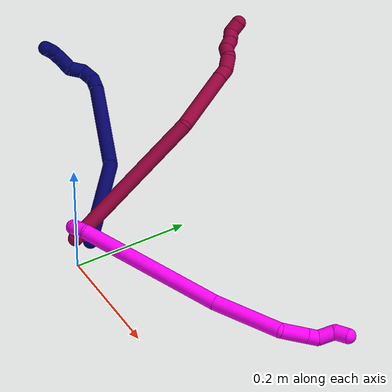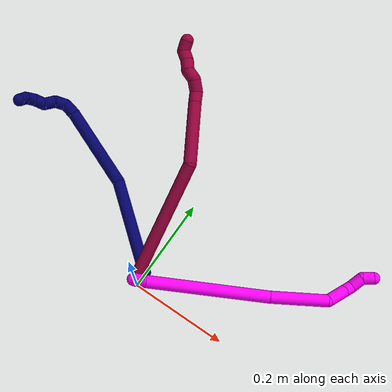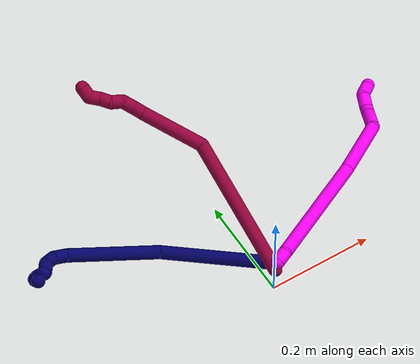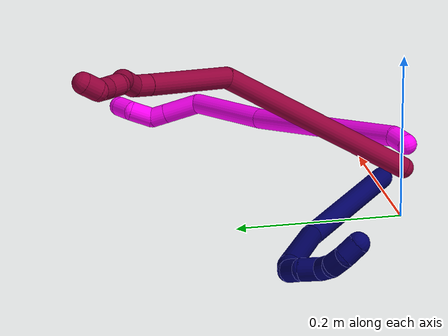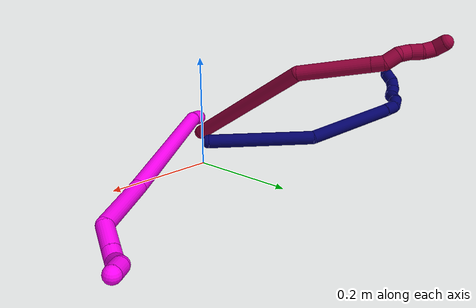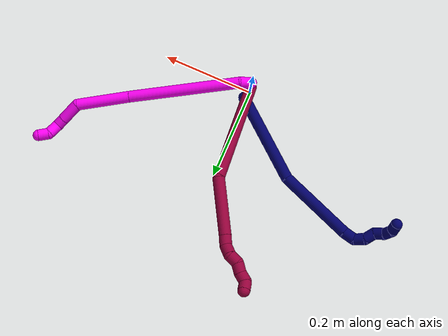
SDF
<sdf version="1.7">
 <world name="default">
  <model name="photoneo_s_sensor">
   <static>1</static>
   <pose>0 0 2 1.57079 1.57079 3.14159</pose>
   <link name="link">
    <inertial><mass>0.1</mass></inertial>
    <sensor name="sensor" type="depth">
     <update_rate>30</update_rate>
     <camera>
      <horizontal_fov>1.22</horizontal_fov>
      <image><width>1920</width><height>1200</height><format>B8G8R8</format></image>
      <clip><near>0.1</near><far>4</far></clip>
      <depth_camera><output>points</output></depth_camera>
     </camera>
     <plugin name="camera_plugin" filename="libgazebo_ros_depth_camera.so">
      <baseline>0.2</baseline>
      <alwaysOn>1</alwaysOn>
      <updateRate>0.0</updateRate>
      <cameraName>camera_ir</cameraName>
      <imageTopicName>/camera/color/image_raw</imageTopicName>
      <cameraInfoTopicName>/camera/color/camera_info</cameraInfoTopicName>
      <depthImageTopicName>/camera/depth/image_raw</depthImageTopicName>
      <depthImageCameraInfoTopicName>/camera/depth/camera_info</depthImageCameraInfoTopicName>
      <pointCloudTopicName>/camera/depth/points</pointCloudTopicName>
      <frameName>fr_optical</frameName>
      <pointCloudCutoff>0.1</pointCloudCutoff>
      <pointCloudCutoffMax>2.0</pointCloudCutoffMax>
      <distortionK1>0</distortionK1>
      <distortionK2>0</distortionK2>
      <distortionK3>0</distortionK3>
      <distortionT1>0</distortionT1>
      <distortionT2>0</distortionT2>
      <CxPrime>0</CxPrime>
      <Cx>0</Cx>
      <Cy>0</Cy>
      <focalLength>0</focalLength>
      <hackBaseline>0</hackBaseline>
     </plugin>
    </sensor>
   </link>
  </model>
  <model name="bin">
   <static>1</static>
   <link name="bottom">
    <collision name="collision-bottom">
     <pose>0 0 -0.01 0 -0 0</pose>
     <geometry><box><size>0.8 0.6 0.02</size></box></geometry>
     <surface>
      <friction><ode><mu>100</mu><mu2>100</mu2></ode></friction>
      <contact><collide_bitmask>65535</collide_bitmask></contact>
     </surface>
    </collision>
   </link>
   <link name="west_wall">
    <collision name="collision-west_wall">
     <pose>-0.41 0 0.1 0 -0 0</pose>
     <geometry><box><size>0.02 0.6 0.2</size></box></geometry>
     <surface>
      <friction><ode><mu>100</mu><mu2>100</mu2></ode></friction>
      <contact><collide_bitmask>65535</collide_bitmask></contact>
     </surface>
    </collision>
   </link>
   <link name="east_wall">
    <collision name="collision-east_wall">
     <pose>0.41 0 0.1 0 -0 0</pose>
     <geometry><box><size>0.02 0.6 0.2</size></box></geometry>
     <surface>
      <friction><ode><mu>100</mu><mu2>100</mu2></ode></friction>
      <contact><collide_bitmask>65535</collide_bitmask></contact>
     </surface>
    </collision>
   </link>
   <link name="south_wall">
    <collision name="collision-south_wall">
     <pose>0 -0.31 0.1 0 -0 0</pose>
     <geometry><box><size>0.8 0.02 0.2</size></box></geometry>
     <surface>
      <friction><ode><mu>100</mu><mu2>100</mu2></ode></friction>
      <contact><collide_bitmask>65535</collide_bitmask></contact>
     </surface>
    </collision>
   </link>
   <link name="north_wall">
    <collision name="collision-north_wall">
     <pose>0 0.31 0.1 0 -0 0</pose>
     <geometry><box><size>0.8 0.02 0.2</size></box></geometry>
     <surface>
      <friction><ode><mu>100</mu><mu2>100</mu2></ode></friction>
      <contact><collide_bitmask>65535</collide_bitmask></contact>
     </surface>
    </collision>
   </link>
  </model>
  <model name="7">
   <static>0</static>
   <link name="7">
    <collision name="collision-cylinder-e_1_1_4">
     <pose>-0.067645 0.048975 0.05299 -0.746049 -0.753142 0.307074</pose>
     <geometry><cylinder><radius>0.0125</radius><length>0.197811</length></cylinder></geometry>
     <surface>
      <friction><ode><mu>1.16</mu><mu2>1.16</mu2><slip1>0</slip1><slip2>0</slip2></ode></friction>
      <contact><ode><kp>1e+06</kp><kd>1</kd><max_vel>0</max_vel><min_depth>0.001</min_depth></ode></contact>
     </surface>
    </collision>
    <visual name="visual-cylinder-e_1_1_4">
     <pose>-0.067645 0.048975 0.05299 -0.746049 -0.753142 0.307074</pose>
     <geometry><cylinder><radius>0.0125</radius><length>0.197811</length></cylinder></geometry>
     <material><ambient>0.003922 0 0.403922 1</ambient></material>
    </visual>
    <collision name="collision-cylinder-e_2_4_5">
     <pose>-0.189091 0.114806 0.169347 -0.259969 -0.687119 0.093462</pose>
     <geometry><cylinder><radius>0.0125</radius><length>0.169637</length></cylinder></geometry>
     <surface>
      <friction><ode><mu>1.16</mu><mu2>1.16</mu2><slip1>0</slip1><slip2>0</slip2></ode></friction>
      <contact><ode><kp>1e+06</kp><kd>1</kd><max_vel>0</max_vel><min_depth>0.001</min_depth></ode></contact>
     </surface>
    </collision>
    <visual name="visual-cylinder-e_2_4_5">
     <pose>-0.189091 0.114806 0.169347 -0.259969 -0.687119 0.093462</pose>
     <geometry><cylinder><radius>0.0125</radius><length>0.169637</length></cylinder></geometry>
     <material><ambient>0.003922 0 0.403922 1</ambient></material>
    </visual>
    <collision name="collision-cylinder-e_3_5_6">
     <pose>-0.251305 0.13222 0.241956 -0.060434 -0.737612 0.023363</pose>
     <geometry><cylinder><radius>0.0125</radius><length>0.025018</length></cylinder></geometry>
     <surface>
      <friction><ode><mu>1.16</mu><mu2>1.16</mu2><slip1>0</slip1><slip2>0</slip2></ode></friction>
      <contact><ode><kp>1e+06</kp><kd>1</kd><max_vel>0</max_vel><min_depth>0.001</min_depth></ode></contact>
     </surface>
    </collision>
    <visual name="visual-cylinder-e_3_5_6">
     <pose>-0.251305 0.13222 0.241956 -0.060434 -0.737612 0.023363</pose>
     <geometry><cylinder><radius>0.0125</radius><length>0.025018</length></cylinder></geometry>
     <material><ambient>0.003922 0 0.403922 1</ambient></material>
    </visual>
    <collision name="collision-cylinder-e_4_6_7">
     <pose>-0.264314 0.126769 0.259654 0.617839 -0.416997 -0.134837</pose>
     <geometry><cylinder><radius>0.0125</radius><length>0.022695</length></cylinder></geometry>
     <surface>
      <friction><ode><mu>1.16</mu><mu2>1.16</mu2><slip1>0</slip1><slip2>0</slip2></ode></friction>
      <contact><ode><kp>1e+06</kp><kd>1</kd><max_vel>0</max_vel><min_depth>0.001</min_depth></ode></contact>
     </surface>
    </collision>
    <visual name="visual-cylinder-e_4_6_7">
     <pose>-0.264314 0.126769 0.259654 0.617839 -0.416997 -0.134837</pose>
     <geometry><cylinder><radius>0.0125</radius><length>0.022695</length></cylinder></geometry>
     <material><ambient>0.003922 0 0.403922 1</ambient></material>
    </visual>
    <collision name="collision-cylinder-e_5_7_8">
     <pose>-0.271769 0.110431 0.272518 1.16748 -0.249311 -0.165159</pose>
     <geometry><cylinder><radius>0.0125</radius><length>0.023175</length></cylinder></geometry>
     <surface>
      <friction><ode><mu>1.16</mu><mu2>1.16</mu2><slip1>0</slip1><slip2>0</slip2></ode></friction>
      <contact><ode><kp>1e+06</kp><kd>1</kd><max_vel>0</max_vel><min_depth>0.001</min_depth></ode></contact>
     </surface>
    </collision>
    <visual name="visual-cylinder-e_5_7_8">
     <pose>-0.271769 0.110431 0.272518 1.16748 -0.249311 -0.165159</pose>
     <geometry><cylinder><radius>0.0125</radius><length>0.023175</length></cylinder></geometry>
     <material><ambient>0.003922 0 0.403922 1</ambient></material>
    </visual>
    <collision name="collision-cylinder-e_6_8_9">
     <pose>-0.278378 0.095282 0.285867 0.494392 -0.353636 -0.090123</pose>
     <geometry><cylinder><radius>0.0125</radius><length>0.021657</length></cylinder></geometry>
     <surface>
      <friction><ode><mu>1.16</mu><mu2>1.16</mu2><slip1>0</slip1><slip2>0</slip2></ode></friction>
      <contact><ode><kp>1e+06</kp><kd>1</kd><max_vel>0</max_vel><min_depth>0.001</min_depth></ode></contact>
     </surface>
    </collision>
    <visual name="visual-cylinder-e_6_8_9">
     <pose>-0.278378 0.095282 0.285867 0.494392 -0.353636 -0.090123</pose>
     <geometry><cylinder><radius>0.0125</radius><length>0.021657</length></cylinder></geometry>
     <material><ambient>0.003922 0 0.403922 1</ambient></material>
    </visual>
    <collision name="collision-cylinder-e_7_9_10">
     <pose>-0.281542 0.084173 0.302564 0.681415 0.058595 0.020779</pose>
     <geometry><cylinder><radius>0.0125</radius><length>0.020003</length></cylinder></geometry>
     <surface>
      <friction><ode><mu>1.16</mu><mu2>1.16</mu2><slip1>0</slip1><slip2>0</slip2></ode></friction>
      <contact><ode><kp>1e+06</kp><kd>1</kd><max_vel>0</max_vel><min_depth>0.001</min_depth></ode></contact>
     </surface>
    </collision>
    <visual name="visual-cylinder-e_7_9_10">
     <pose>-0.281542 0.084173 0.302564 0.681415 0.058595 0.020779</pose>
     <geometry><cylinder><radius>0.0125</radius><length>0.020003</length></cylinder></geometry>
     <material><ambient>0.003922 0 0.403922 1</ambient></material>
    </visual>
    <collision name="collision-cylinder-e_8_10_2">
     <pose>-0.276542 0.070318 0.315146 1.00287 0.457128 0.253672</pose>
     <geometry><cylinder><radius>0.0125</radius><length>0.020003</length></cylinder></geometry>
     <surface>
      <friction><ode><mu>1.16</mu><mu2>1.16</mu2><slip1>0</slip1><slip2>0</slip2></ode></friction>
      <contact><ode><kp>1e+06</kp><kd>1</kd><max_vel>0</max_vel><min_depth>0.001</min_depth></ode></contact>
     </surface>
    </collision>
    <visual name="visual-cylinder-e_8_10_2">
     <pose>-0.276542 0.070318 0.315146 1.00287 0.457128 0.253672</pose>
     <geometry><cylinder><radius>0.0125</radius><length>0.020003</length></cylinder></geometry>
     <material><ambient>0.003922 0 0.403922 1</ambient></material>
    </visual>
    <collision name="collision-sphere-2">
     <pose>-0.272128 0.062752 0.319973 0 -0 0</pose>
     <geometry><sphere><radius>0.0125</radius></sphere></geometry>
     <surface>
      <friction><ode><mu>1.16</mu><mu2>1.16</mu2><slip1>0</slip1><slip2>0</slip2></ode></friction>
      <contact><ode><kp>1e+06</kp><kd>1</kd><max_vel>0</max_vel><min_depth>0.001</min_depth></ode></contact>
     </surface>
    </collision>
    <visual name="visual-sphere-2">
     <pose>-0.272128 0.062752 0.319973 0 -0 0</pose>
     <geometry><sphere><radius>0.0125</radius></sphere></geometry>
     <material><ambient>0.003922 0 0.403922 1</ambient></material>
    </visual>
    <collision name="collision-sphere-10">
     <pose>-0.280957 0.077884 0.310319 0 -0 0</pose>
     <geometry><sphere><radius>0.0125</radius></sphere></geometry>
     <surface>
      <friction><ode><mu>1.16</mu><mu2>1.16</mu2><slip1>0</slip1><slip2>0</slip2></ode></friction>
      <contact><ode><kp>1e+06</kp><kd>1</kd><max_vel>0</max_vel><min_depth>0.001</min_depth></ode></contact>
     </surface>
    </collision>
    <visual name="visual-sphere-10">
     <pose>-0.280957 0.077884 0.310319 0 -0 0</pose>
     <geometry><sphere><radius>0.0125</radius></sphere></geometry>
     <material><ambient>0.003922 0 0.403922 1</ambient></material>
    </visual>
    <collision name="collision-sphere-9">
     <pose>-0.282128 0.090462 0.294809 0 -0 0</pose>
     <geometry><sphere><radius>0.0125</radius></sphere></geometry>
     <surface>
      <friction><ode><mu>1.16</mu><mu2>1.16</mu2><slip1>0</slip1><slip2>0</slip2></ode></friction>
      <contact><ode><kp>1e+06</kp><kd>1</kd><max_vel>0</max_vel><min_depth>0.001</min_depth></ode></contact>
     </surface>
    </collision>
    <visual name="visual-sphere-9">
     <pose>-0.282128 0.090462 0.294809 0 -0 0</pose>
     <geometry><sphere><radius>0.0125</radius></sphere></geometry>
     <material><ambient>0.003922 0 0.403922 1</ambient></material>
    </visual>
    <collision name="collision-sphere-4">
     <pose>-0.13529 0.097951 0.105979 0 -0 0</pose>
     <geometry><sphere><radius>0.0125</radius></sphere></geometry>
     <surface>
      <friction><ode><mu>1.16</mu><mu2>1.16</mu2><slip1>0</slip1><slip2>0</slip2></ode></friction>
      <contact><ode><kp>1e+06</kp><kd>1</kd><max_vel>0</max_vel><min_depth>0.001</min_depth></ode></contact>
     </surface>
    </collision>
    <visual name="visual-sphere-4">
     <pose>-0.13529 0.097951 0.105979 0 -0 0</pose>
     <geometry><sphere><radius>0.0125</radius></sphere></geometry>
     <material><ambient>0.003922 0 0.403922 1</ambient></material>
    </visual>
    <collision name="collision-sphere-1">
     <geometry><sphere><radius>0.0125</radius></sphere></geometry>
     <surface>
      <friction><ode><mu>1.16</mu><mu2>1.16</mu2><slip1>0</slip1><slip2>0</slip2></ode></friction>
      <contact><ode><kp>1e+06</kp><kd>1</kd><max_vel>0</max_vel><min_depth>0.001</min_depth></ode></contact>
     </surface>
    </collision>
    <visual name="visual-sphere-1">
     <geometry><sphere><radius>0.0125</radius></sphere></geometry>
     <material><ambient>0.003922 0 0.403922 1</ambient></material>
    </visual>
    <collision name="collision-sphere-8">
     <pose>-0.274628 0.100103 0.276925 0 -0 0</pose>
     <geometry><sphere><radius>0.0125</radius></sphere></geometry>
     <surface>
      <friction><ode><mu>1.16</mu><mu2>1.16</mu2><slip1>0</slip1><slip2>0</slip2></ode></friction>
      <contact><ode><kp>1e+06</kp><kd>1</kd><max_vel>0</max_vel><min_depth>0.001</min_depth></ode></contact>
     </surface>
    </collision>
    <visual name="visual-sphere-8">
     <pose>-0.274628 0.100103 0.276925 0 -0 0</pose>
     <geometry><sphere><radius>0.0125</radius></sphere></geometry>
     <material><ambient>0.003922 0 0.403922 1</ambient></material>
    </visual>
    <collision name="collision-sphere-5">
     <pose>-0.242893 0.131661 0.232715 0 -0 0</pose>
     <geometry><sphere><radius>0.0125</radius></sphere></geometry>
     <surface>
      <friction><ode><mu>1.16</mu><mu2>1.16</mu2><slip1>0</slip1><slip2>0</slip2></ode></friction>
      <contact><ode><kp>1e+06</kp><kd>1</kd><max_vel>0</max_vel><min_depth>0.001</min_depth></ode></contact>
     </surface>
    </collision>
    <visual name="visual-sphere-5">
     <pose>-0.242893 0.131661 0.232715 0 -0 0</pose>
     <geometry><sphere><radius>0.0125</radius></sphere></geometry>
     <material><ambient>0.003922 0 0.403922 1</ambient></material>
    </visual>
    <collision name="collision-sphere-6">
     <pose>-0.259718 0.132779 0.251197 0 -0 0</pose>
     <geometry><sphere><radius>0.0125</radius></sphere></geometry>
     <surface>
      <friction><ode><mu>1.16</mu><mu2>1.16</mu2><slip1>0</slip1><slip2>0</slip2></ode></friction>
      <contact><ode><kp>1e+06</kp><kd>1</kd><max_vel>0</max_vel><min_depth>0.001</min_depth></ode></contact>
     </surface>
    </collision>
    <visual name="visual-sphere-6">
     <pose>-0.259718 0.132779 0.251197 0 -0 0</pose>
     <geometry><sphere><radius>0.0125</radius></sphere></geometry>
     <material><ambient>0.003922 0 0.403922 1</ambient></material>
    </visual>
    <collision name="collision-sphere-7">
     <pose>-0.26891 0.120759 0.268111 0 -0 0</pose>
     <geometry><sphere><radius>0.0125</radius></sphere></geometry>
     <surface>
      <friction><ode><mu>1.16</mu><mu2>1.16</mu2><slip1>0</slip1><slip2>0</slip2></ode></friction>
      <contact><ode><kp>1e+06</kp><kd>1</kd><max_vel>0</max_vel><min_depth>0.001</min_depth></ode></contact>
     </surface>
    </collision>
    <visual name="visual-sphere-7">
     <pose>-0.26891 0.120759 0.268111 0 -0 0</pose>
     <geometry><sphere><radius>0.0125</radius></sphere></geometry>
     <material><ambient>0.003922 0 0.403922 1</ambient></material>
    </visual>
    <inertial>
     <pose>-0.162469 0.086122 0.152037 0 -0 0</pose>
     <mass>0.5</mass>
     <inertia>
      <ixx>0.000934</ixx>
      <ixy>0</ixy>
      <ixz>0</ixz>
      <iyy>0.001139</iyy>
      <iyz>0</iyz>
      <izz>0.000336</izz>
     </inertia>
    </inertial>
   </link>
   <pose>0.005584 0.022545 0.04863 -0.063841 -0.642836 -0.119313</pose>
  </model>
  <model name="8">
   <static>0</static>
   <link name="8">
    <collision name="collision-cylinder-e_1_1_4">
     <pose>0.006098 0.009355 0.127388 -0.073303 0.047701 -0.001749</pose>
     <geometry><cylinder><radius>0.0125</radius><length>0.255754</length></cylinder></geometry>
     <surface>
      <friction><ode><mu>1.16</mu><mu2>1.16</mu2><slip1>0</slip1><slip2>0</slip2></ode></friction>
      <contact><ode><kp>1e+06</kp><kd>1</kd><max_vel>0</max_vel><min_depth>0.001</min_depth></ode></contact>
     </surface>
    </collision>
    <visual name="visual-cylinder-e_1_1_4">
     <pose>0.006098 0.009355 0.127388 -0.073303 0.047701 -0.001749</pose>
     <geometry><cylinder><radius>0.0125</radius><length>0.255754</length></cylinder></geometry>
     <material><ambient>0.584314 0 0.227451 1</ambient></material>
    </visual>
    <collision name="collision-cylinder-e_2_4_5">
     <pose>-0.013319 0.037832 0.304481 -0.367274 -0.446772 0.084337</pose>
     <geometry><cylinder><radius>0.0125</radius><length>0.118105</length></cylinder></geometry>
     <surface>
      <friction><ode><mu>1.16</mu><mu2>1.16</mu2><slip1>0</slip1><slip2>0</slip2></ode></friction>
      <contact><ode><kp>1e+06</kp><kd>1</kd><max_vel>0</max_vel><min_depth>0.001</min_depth></ode></contact>
     </surface>
    </collision>
    <visual name="visual-cylinder-e_2_4_5">
     <pose>-0.013319 0.037832 0.304481 -0.367274 -0.446772 0.084337</pose>
     <geometry><cylinder><radius>0.0125</radius><length>0.118105</length></cylinder></geometry>
     <material><ambient>0.584314 0 0.227451 1</ambient></material>
    </visual>
    <collision name="collision-cylinder-e_3_5_6">
     <pose>-0.042926 0.060514 0.363184 -0.376686 -0.40014 0.077263</pose>
     <geometry><cylinder><radius>0.0125</radius><length>0.021012</length></cylinder></geometry>
     <surface>
      <friction><ode><mu>1.16</mu><mu2>1.16</mu2><slip1>0</slip1><slip2>0</slip2></ode></friction>
      <contact><ode><kp>1e+06</kp><kd>1</kd><max_vel>0</max_vel><min_depth>0.001</min_depth></ode></contact>
     </surface>
    </collision>
    <visual name="visual-cylinder-e_3_5_6">
     <pose>-0.042926 0.060514 0.363184 -0.376686 -0.40014 0.077263</pose>
     <geometry><cylinder><radius>0.0125</radius><length>0.021012</length></cylinder></geometry>
     <material><ambient>0.584314 0 0.227451 1</ambient></material>
    </visual>
    <collision name="collision-cylinder-e_4_6_7">
     <pose>-0.052882 0.062117 0.382437 0.188524 -0.51175 -0.049456</pose>
     <geometry><cylinder><radius>0.0125</radius><length>0.023949</length></cylinder></geometry>
     <surface>
      <friction><ode><mu>1.16</mu><mu2>1.16</mu2><slip1>0</slip1><slip2>0</slip2></ode></friction>
      <contact><ode><kp>1e+06</kp><kd>1</kd><max_vel>0</max_vel><min_depth>0.001</min_depth></ode></contact>
     </surface>
    </collision>
    <visual name="visual-cylinder-e_4_6_7">
     <pose>-0.052882 0.062117 0.382437 0.188524 -0.51175 -0.049456</pose>
     <geometry><cylinder><radius>0.0125</radius><length>0.023949</length></cylinder></geometry>
     <material><ambient>0.584314 0 0.227451 1</ambient></material>
    </visual>
    <collision name="collision-cylinder-e_5_7_8">
     <pose>-0.067825 0.060336 0.397487 -0.036509 -1.08462 0.022001</pose>
     <geometry><cylinder><radius>0.0125</radius><length>0.020536</length></cylinder></geometry>
     <surface>
      <friction><ode><mu>1.16</mu><mu2>1.16</mu2><slip1>0</slip1><slip2>0</slip2></ode></friction>
      <contact><ode><kp>1e+06</kp><kd>1</kd><max_vel>0</max_vel><min_depth>0.001</min_depth></ode></contact>
     </surface>
    </collision>
    <visual name="visual-cylinder-e_5_7_8">
     <pose>-0.067825 0.060336 0.397487 -0.036509 -1.08462 0.022001</pose>
     <geometry><cylinder><radius>0.0125</radius><length>0.020536</length></cylinder></geometry>
     <material><ambient>0.584314 0 0.227451 1</ambient></material>
    </visual>
    <collision name="collision-cylinder-e_6_8_9">
     <pose>-0.082837 0.064029 0.409856 -0.434846 -0.617748 0.140749</pose>
     <geometry><cylinder><radius>0.0125</radius><length>0.020489</length></cylinder></geometry>
     <surface>
      <friction><ode><mu>1.16</mu><mu2>1.16</mu2><slip1>0</slip1><slip2>0</slip2></ode></friction>
      <contact><ode><kp>1e+06</kp><kd>1</kd><max_vel>0</max_vel><min_depth>0.001</min_depth></ode></contact>
     </surface>
    </collision>
    <visual name="visual-cylinder-e_6_8_9">
     <pose>-0.082837 0.064029 0.409856 -0.434846 -0.617748 0.140749</pose>
     <geometry><cylinder><radius>0.0125</radius><length>0.020489</length></cylinder></geometry>
     <material><ambient>0.584314 0 0.227451 1</ambient></material>
    </visual>
    <collision name="collision-cylinder-e_7_9_10">
     <pose>-0.096104 0.068446 0.424168 -0.132598 -0.8233 0.05796</pose>
     <geometry><cylinder><radius>0.0125</radius><length>0.02</length></cylinder></geometry>
     <surface>
      <friction><ode><mu>1.16</mu><mu2>1.16</mu2><slip1>0</slip1><slip2>0</slip2></ode></friction>
      <contact><ode><kp>1e+06</kp><kd>1</kd><max_vel>0</max_vel><min_depth>0.001</min_depth></ode></contact>
     </surface>
    </collision>
    <visual name="visual-cylinder-e_7_9_10">
     <pose>-0.096104 0.068446 0.424168 -0.132598 -0.8233 0.05796</pose>
     <geometry><cylinder><radius>0.0125</radius><length>0.02</length></cylinder></geometry>
     <material><ambient>0.584314 0 0.227451 1</ambient></material>
    </visual>
    <collision name="collision-cylinder-e_8_10_2">
     <pose>-0.104051 0.069795 0.440955 -0.04477 -0.060809 0.001362</pose>
     <geometry><cylinder><radius>0.0125</radius><length>0.020154</length></cylinder></geometry>
     <surface>
      <friction><ode><mu>1.16</mu><mu2>1.16</mu2><slip1>0</slip1><slip2>0</slip2></ode></friction>
      <contact><ode><kp>1e+06</kp><kd>1</kd><max_vel>0</max_vel><min_depth>0.001</min_depth></ode></contact>
     </surface>
    </collision>
    <visual name="visual-cylinder-e_8_10_2">
     <pose>-0.104051 0.069795 0.440955 -0.04477 -0.060809 0.001362</pose>
     <geometry><cylinder><radius>0.0125</radius><length>0.020154</length></cylinder></geometry>
     <material><ambient>0.584314 0 0.227451 1</ambient></material>
    </visual>
    <collision name="collision-sphere-2">
     <pose>-0.104663 0.070245 0.451004 0 -0 0</pose>
     <geometry><sphere><radius>0.0125</radius></sphere></geometry>
     <surface>
      <friction><ode><mu>1.16</mu><mu2>1.16</mu2><slip1>0</slip1><slip2>0</slip2></ode></friction>
      <contact><ode><kp>1e+06</kp><kd>1</kd><max_vel>0</max_vel><min_depth>0.001</min_depth></ode></contact>
     </surface>
    </collision>
    <visual name="visual-sphere-2">
     <pose>-0.104663 0.070245 0.451004 0 -0 0</pose>
     <geometry><sphere><radius>0.0125</radius></sphere></geometry>
     <material><ambient>0.584314 0 0.227451 1</ambient></material>
    </visual>
    <collision name="collision-sphere-10">
     <pose>-0.103438 0.069344 0.430907 0 -0 0</pose>
     <geometry><sphere><radius>0.0125</radius></sphere></geometry>
     <surface>
      <friction><ode><mu>1.16</mu><mu2>1.16</mu2><slip1>0</slip1><slip2>0</slip2></ode></friction>
      <contact><ode><kp>1e+06</kp><kd>1</kd><max_vel>0</max_vel><min_depth>0.001</min_depth></ode></contact>
     </surface>
    </collision>
    <visual name="visual-sphere-10">
     <pose>-0.103438 0.069344 0.430907 0 -0 0</pose>
     <geometry><sphere><radius>0.0125</radius></sphere></geometry>
     <material><ambient>0.584314 0 0.227451 1</ambient></material>
    </visual>
    <collision name="collision-sphere-9">
     <pose>-0.08877 0.067547 0.41743 0 -0 0</pose>
     <geometry><sphere><radius>0.0125</radius></sphere></geometry>
     <surface>
      <friction><ode><mu>1.16</mu><mu2>1.16</mu2><slip1>0</slip1><slip2>0</slip2></ode></friction>
      <contact><ode><kp>1e+06</kp><kd>1</kd><max_vel>0</max_vel><min_depth>0.001</min_depth></ode></contact>
     </surface>
    </collision>
    <visual name="visual-sphere-9">
     <pose>-0.08877 0.067547 0.41743 0 -0 0</pose>
     <geometry><sphere><radius>0.0125</radius></sphere></geometry>
     <material><ambient>0.584314 0 0.227451 1</ambient></material>
    </visual>
    <collision name="collision-sphere-4">
     <pose>0.012195 0.018709 0.254777 0 -0 0</pose>
     <geometry><sphere><radius>0.0125</radius></sphere></geometry>
     <surface>
      <friction><ode><mu>1.16</mu><mu2>1.16</mu2><slip1>0</slip1><slip2>0</slip2></ode></friction>
      <contact><ode><kp>1e+06</kp><kd>1</kd><max_vel>0</max_vel><min_depth>0.001</min_depth></ode></contact>
     </surface>
    </collision>
    <visual name="visual-sphere-4">
     <pose>0.012195 0.018709 0.254777 0 -0 0</pose>
     <geometry><sphere><radius>0.0125</radius></sphere></geometry>
     <material><ambient>0.584314 0 0.227451 1</ambient></material>
    </visual>
    <collision name="collision-sphere-1">
     <geometry><sphere><radius>0.0125</radius></sphere></geometry>
     <surface>
      <friction><ode><mu>1.16</mu><mu2>1.16</mu2><slip1>0</slip1><slip2>0</slip2></ode></friction>
      <contact><ode><kp>1e+06</kp><kd>1</kd><max_vel>0</max_vel><min_depth>0.001</min_depth></ode></contact>
     </surface>
    </collision>
    <visual name="visual-sphere-1">
     <geometry><sphere><radius>0.0125</radius></sphere></geometry>
     <material><ambient>0.584314 0 0.227451 1</ambient></material>
    </visual>
    <collision name="collision-sphere-8">
     <pose>-0.076903 0.060511 0.402282 0 -0 0</pose>
     <geometry><sphere><radius>0.0125</radius></sphere></geometry>
     <surface>
      <friction><ode><mu>1.16</mu><mu2>1.16</mu2><slip1>0</slip1><slip2>0</slip2></ode></friction>
      <contact><ode><kp>1e+06</kp><kd>1</kd><max_vel>0</max_vel><min_depth>0.001</min_depth></ode></contact>
     </surface>
    </collision>
    <visual name="visual-sphere-8">
     <pose>-0.076903 0.060511 0.402282 0 -0 0</pose>
     <geometry><sphere><radius>0.0125</radius></sphere></geometry>
     <material><ambient>0.584314 0 0.227451 1</ambient></material>
    </visual>
    <collision name="collision-sphere-5">
     <pose>-0.038833 0.056955 0.354186 0 -0 0</pose>
     <geometry><sphere><radius>0.0125</radius></sphere></geometry>
     <surface>
      <friction><ode><mu>1.16</mu><mu2>1.16</mu2><slip1>0</slip1><slip2>0</slip2></ode></friction>
      <contact><ode><kp>1e+06</kp><kd>1</kd><max_vel>0</max_vel><min_depth>0.001</min_depth></ode></contact>
     </surface>
    </collision>
    <visual name="visual-sphere-5">
     <pose>-0.038833 0.056955 0.354186 0 -0 0</pose>
     <geometry><sphere><radius>0.0125</radius></sphere></geometry>
     <material><ambient>0.584314 0 0.227451 1</ambient></material>
    </visual>
    <collision name="collision-sphere-6">
     <pose>-0.047018 0.064074 0.372182 0 -0 0</pose>
     <geometry><sphere><radius>0.0125</radius></sphere></geometry>
     <surface>
      <friction><ode><mu>1.16</mu><mu2>1.16</mu2><slip1>0</slip1><slip2>0</slip2></ode></friction>
      <contact><ode><kp>1e+06</kp><kd>1</kd><max_vel>0</max_vel><min_depth>0.001</min_depth></ode></contact>
     </surface>
    </collision>
    <visual name="visual-sphere-6">
     <pose>-0.047018 0.064074 0.372182 0 -0 0</pose>
     <geometry><sphere><radius>0.0125</radius></sphere></geometry>
     <material><ambient>0.584314 0 0.227451 1</ambient></material>
    </visual>
    <collision name="collision-sphere-7">
     <pose>-0.058746 0.06016 0.392693 0 -0 0</pose>
     <geometry><sphere><radius>0.0125</radius></sphere></geometry>
     <surface>
      <friction><ode><mu>1.16</mu><mu2>1.16</mu2><slip1>0</slip1><slip2>0</slip2></ode></friction>
      <contact><ode><kp>1e+06</kp><kd>1</kd><max_vel>0</max_vel><min_depth>0.001</min_depth></ode></contact>
     </surface>
    </collision>
    <visual name="visual-sphere-7">
     <pose>-0.058746 0.06016 0.392693 0 -0 0</pose>
     <geometry><sphere><radius>0.0125</radius></sphere></geometry>
     <material><ambient>0.584314 0 0.227451 1</ambient></material>
    </visual>
    <inertial>
     <pose>-0.018583 0.029893 0.238525 0 -0 0</pose>
     <mass>0.5</mass>
     <inertia>
      <ixx>0.001538</ixx>
      <ixy>0</ixy>
      <ixz>0</ixz>
      <iyy>0.001558</iyy>
      <iyz>0</iyz>
      <izz>-0.000115</izz>
     </inertia>
    </inertial>
   </link>
   <pose>0.000442 -0.001872 0.061111 -0.941457 -0.170696 0.030425</pose>
  </model>
  <model name="10">
   <static>0</static>
   <link name="10">
    <collision name="collision-cylinder-e_1_1_4">
     <pose>0.009399 0.006719 0.003081 -1.14093 0.904347 -0.604242</pose>
     <geometry><cylinder><radius>0.0125</radius><length>0.023915</length></cylinder></geometry>
     <surface>
      <friction><ode><mu>1.16</mu><mu2>1.16</mu2><slip1>0</slip1><slip2>0</slip2></ode></friction>
      <contact><ode><kp>1e+06</kp><kd>1</kd><max_vel>0</max_vel><min_depth>0.001</min_depth></ode></contact>
     </surface>
    </collision>
    <visual name="visual-cylinder-e_1_1_4">
     <pose>0.009399 0.006719 0.003081 -1.14093 0.904347 -0.604242</pose>
     <geometry><cylinder><radius>0.0125</radius><length>0.023915</length></cylinder></geometry>
     <material><ambient>1 0 0.964706 1</ambient></material>
    </visual>
    <collision name="collision-cylinder-e_2_4_5">
     <pose>0.105013 0.099539 0.005577 -1.57758 0.786058 -0.790867</pose>
     <geometry><cylinder><radius>0.0125</radius><length>0.243693</length></cylinder></geometry>
     <surface>
      <friction><ode><mu>1.16</mu><mu2>1.16</mu2><slip1>0</slip1><slip2>0</slip2></ode></friction>
      <contact><ode><kp>1e+06</kp><kd>1</kd><max_vel>0</max_vel><min_depth>0.001</min_depth></ode></contact>
     </surface>
    </collision>
    <visual name="visual-cylinder-e_2_4_5">
     <pose>0.105013 0.099539 0.005577 -1.57758 0.786058 -0.790867</pose>
     <geometry><cylinder><radius>0.0125</radius><length>0.243693</length></cylinder></geometry>
     <material><ambient>1 0 0.964706 1</ambient></material>
    </visual>
    <collision name="collision-cylinder-e_3_5_6">
     <pose>0.230884 0.227267 0.010524 -1.43872 0.756765 -0.670171</pose>
     <geometry><cylinder><radius>0.0125</radius><length>0.115518</length></cylinder></geometry>
     <surface>
      <friction><ode><mu>1.16</mu><mu2>1.16</mu2><slip1>0</slip1><slip2>0</slip2></ode></friction>
      <contact><ode><kp>1e+06</kp><kd>1</kd><max_vel>0</max_vel><min_depth>0.001</min_depth></ode></contact>
     </surface>
    </collision>
    <visual name="visual-cylinder-e_3_5_6">
     <pose>0.230884 0.227267 0.010524 -1.43872 0.756765 -0.670171</pose>
     <geometry><cylinder><radius>0.0125</radius><length>0.115518</length></cylinder></geometry>
     <material><ambient>1 0 0.964706 1</ambient></material>
    </visual>
    <collision name="collision-cylinder-e_4_6_7">
     <pose>0.273803 0.291099 0.01311 -1.70263 0.144677 -0.165041</pose>
     <geometry><cylinder><radius>0.0125</radius><length>0.045269</length></cylinder></geometry>
     <surface>
      <friction><ode><mu>1.16</mu><mu2>1.16</mu2><slip1>0</slip1><slip2>0</slip2></ode></friction>
      <contact><ode><kp>1e+06</kp><kd>1</kd><max_vel>0</max_vel><min_depth>0.001</min_depth></ode></contact>
     </surface>
    </collision>
    <visual name="visual-cylinder-e_4_6_7">
     <pose>0.273803 0.291099 0.01311 -1.70263 0.144677 -0.165041</pose>
     <geometry><cylinder><radius>0.0125</radius><length>0.045269</length></cylinder></geometry>
     <material><ambient>1 0 0.964706 1</ambient></material>
    </visual>
    <collision name="collision-cylinder-e_5_7_8">
     <pose>0.278498 0.323172 0.008881 -1.70032 0.142926 -0.162667</pose>
     <geometry><cylinder><radius>0.0125</radius><length>0.02011</length></cylinder></geometry>
     <surface>
      <friction><ode><mu>1.16</mu><mu2>1.16</mu2><slip1>0</slip1><slip2>0</slip2></ode></friction>
      <contact><ode><kp>1e+06</kp><kd>1</kd><max_vel>0</max_vel><min_depth>0.001</min_depth></ode></contact>
     </surface>
    </collision>
    <visual name="visual-cylinder-e_5_7_8">
     <pose>0.278498 0.323172 0.008881 -1.70032 0.142926 -0.162667</pose>
     <geometry><cylinder><radius>0.0125</radius><length>0.02011</length></cylinder></geometry>
     <material><ambient>1 0 0.964706 1</ambient></material>
    </visual>
    <collision name="collision-cylinder-e_6_8_9">
     <pose>0.281014 0.345229 0.014849 -1.03395 0.076265 -0.043375</pose>
     <geometry><cylinder><radius>0.0125</radius><length>0.028448</length></cylinder></geometry>
     <surface>
      <friction><ode><mu>1.16</mu><mu2>1.16</mu2><slip1>0</slip1><slip2>0</slip2></ode></friction>
      <contact><ode><kp>1e+06</kp><kd>1</kd><max_vel>0</max_vel><min_depth>0.001</min_depth></ode></contact>
     </surface>
    </collision>
    <visual name="visual-cylinder-e_6_8_9">
     <pose>0.281014 0.345229 0.014849 -1.03395 0.076265 -0.043375</pose>
     <geometry><cylinder><radius>0.0125</radius><length>0.028448</length></cylinder></geometry>
     <material><ambient>1 0 0.964706 1</ambient></material>
    </visual>
    <collision name="collision-cylinder-e_7_9_2">
     <pose>0.289748 0.365674 0.024567 -1.28073 0.725985 -0.551598</pose>
     <geometry><cylinder><radius>0.0125</radius><length>0.023047</length></cylinder></geometry>
     <surface>
      <friction><ode><mu>1.16</mu><mu2>1.16</mu2><slip1>0</slip1><slip2>0</slip2></ode></friction>
      <contact><ode><kp>1e+06</kp><kd>1</kd><max_vel>0</max_vel><min_depth>0.001</min_depth></ode></contact>
     </surface>
    </collision>
    <visual name="visual-cylinder-e_7_9_2">
     <pose>0.289748 0.365674 0.024567 -1.28073 0.725985 -0.551598</pose>
     <geometry><cylinder><radius>0.0125</radius><length>0.023047</length></cylinder></geometry>
     <material><ambient>1 0 0.964706 1</ambient></material>
    </visual>
    <collision name="collision-sphere-2">
     <pose>0.297398 0.373932 0.027032 0 -0 0</pose>
     <geometry><sphere><radius>0.0125</radius></sphere></geometry>
     <surface>
      <friction><ode><mu>1.16</mu><mu2>1.16</mu2><slip1>0</slip1><slip2>0</slip2></ode></friction>
      <contact><ode><kp>1e+06</kp><kd>1</kd><max_vel>0</max_vel><min_depth>0.001</min_depth></ode></contact>
     </surface>
    </collision>
    <visual name="visual-sphere-2">
     <pose>0.297398 0.373932 0.027032 0 -0 0</pose>
     <geometry><sphere><radius>0.0125</radius></sphere></geometry>
     <material><ambient>1 0 0.964706 1</ambient></material>
    </visual>
    <collision name="collision-sphere-9">
     <pose>0.282098 0.357416 0.022102 0 -0 0</pose>
     <geometry><sphere><radius>0.0125</radius></sphere></geometry>
     <surface>
      <friction><ode><mu>1.16</mu><mu2>1.16</mu2><slip1>0</slip1><slip2>0</slip2></ode></friction>
      <contact><ode><kp>1e+06</kp><kd>1</kd><max_vel>0</max_vel><min_depth>0.001</min_depth></ode></contact>
     </surface>
    </collision>
    <visual name="visual-sphere-9">
     <pose>0.282098 0.357416 0.022102 0 -0 0</pose>
     <geometry><sphere><radius>0.0125</radius></sphere></geometry>
     <material><ambient>1 0 0.964706 1</ambient></material>
    </visual>
    <collision name="collision-sphere-4">
     <pose>0.018797 0.013439 0.006161 0 -0 0</pose>
     <geometry><sphere><radius>0.0125</radius></sphere></geometry>
     <surface>
      <friction><ode><mu>1.16</mu><mu2>1.16</mu2><slip1>0</slip1><slip2>0</slip2></ode></friction>
      <contact><ode><kp>1e+06</kp><kd>1</kd><max_vel>0</max_vel><min_depth>0.001</min_depth></ode></contact>
     </surface>
    </collision>
    <visual name="visual-sphere-4">
     <pose>0.018797 0.013439 0.006161 0 -0 0</pose>
     <geometry><sphere><radius>0.0125</radius></sphere></geometry>
     <material><ambient>1 0 0.964706 1</ambient></material>
    </visual>
    <collision name="collision-sphere-1">
     <geometry><sphere><radius>0.0125</radius></sphere></geometry>
     <surface>
      <friction><ode><mu>1.16</mu><mu2>1.16</mu2><slip1>0</slip1><slip2>0</slip2></ode></friction>
      <contact><ode><kp>1e+06</kp><kd>1</kd><max_vel>0</max_vel><min_depth>0.001</min_depth></ode></contact>
     </surface>
    </collision>
    <visual name="visual-sphere-1">
     <geometry><sphere><radius>0.0125</radius></sphere></geometry>
     <material><ambient>1 0 0.964706 1</ambient></material>
    </visual>
    <collision name="collision-sphere-8">
     <pose>0.279931 0.333041 0.007595 0 -0 0</pose>
     <geometry><sphere><radius>0.0125</radius></sphere></geometry>
     <surface>
      <friction><ode><mu>1.16</mu><mu2>1.16</mu2><slip1>0</slip1><slip2>0</slip2></ode></friction>
      <contact><ode><kp>1e+06</kp><kd>1</kd><max_vel>0</max_vel><min_depth>0.001</min_depth></ode></contact>
     </surface>
    </collision>
    <visual name="visual-sphere-8">
     <pose>0.279931 0.333041 0.007595 0 -0 0</pose>
     <geometry><sphere><radius>0.0125</radius></sphere></geometry>
     <material><ambient>1 0 0.964706 1</ambient></material>
    </visual>
    <collision name="collision-sphere-5">
     <pose>0.191228 0.185638 0.004994 0 -0 0</pose>
     <geometry><sphere><radius>0.0125</radius></sphere></geometry>
     <surface>
      <friction><ode><mu>1.16</mu><mu2>1.16</mu2><slip1>0</slip1><slip2>0</slip2></ode></friction>
      <contact><ode><kp>1e+06</kp><kd>1</kd><max_vel>0</max_vel><min_depth>0.001</min_depth></ode></contact>
     </surface>
    </collision>
    <visual name="visual-sphere-5">
     <pose>0.191228 0.185638 0.004994 0 -0 0</pose>
     <geometry><sphere><radius>0.0125</radius></sphere></geometry>
     <material><ambient>1 0 0.964706 1</ambient></material>
    </visual>
    <collision name="collision-sphere-6">
     <pose>0.27054 0.268895 0.016055 0 -0 0</pose>
     <geometry><sphere><radius>0.0125</radius></sphere></geometry>
     <surface>
      <friction><ode><mu>1.16</mu><mu2>1.16</mu2><slip1>0</slip1><slip2>0</slip2></ode></friction>
      <contact><ode><kp>1e+06</kp><kd>1</kd><max_vel>0</max_vel><min_depth>0.001</min_depth></ode></contact>
     </surface>
    </collision>
    <visual name="visual-sphere-6">
     <pose>0.27054 0.268895 0.016055 0 -0 0</pose>
     <geometry><sphere><radius>0.0125</radius></sphere></geometry>
     <material><ambient>1 0 0.964706 1</ambient></material>
    </visual>
    <collision name="collision-sphere-7">
     <pose>0.277066 0.313303 0.010166 0 -0 0</pose>
     <geometry><sphere><radius>0.0125</radius></sphere></geometry>
     <surface>
      <friction><ode><mu>1.16</mu><mu2>1.16</mu2><slip1>0</slip1><slip2>0</slip2></ode></friction>
      <contact><ode><kp>1e+06</kp><kd>1</kd><max_vel>0</max_vel><min_depth>0.001</min_depth></ode></contact>
     </surface>
    </collision>
    <visual name="visual-sphere-7">
     <pose>0.277066 0.313303 0.010166 0 -0 0</pose>
     <geometry><sphere><radius>0.0125</radius></sphere></geometry>
     <material><ambient>1 0 0.964706 1</ambient></material>
    </visual>
    <inertial>
     <pose>0.170309 0.177193 0.008819 0 -0 0</pose>
     <mass>0.5</mass>
     <inertia>
      <ixx>4.5e-05</ixx>
      <ixy>0</ixy>
      <ixz>0</ixz>
      <iyy>3.4e-05</iyy>
      <iyz>0</iyz>
      <izz>-0.001925</izz>
     </inertia>
    </inertial>
   </link>
   <pose>0.002957 -0.005877 0.089418 -0.247998 0.002226 -0.259339</pose>
  </model>
 </world>
</sdf>
